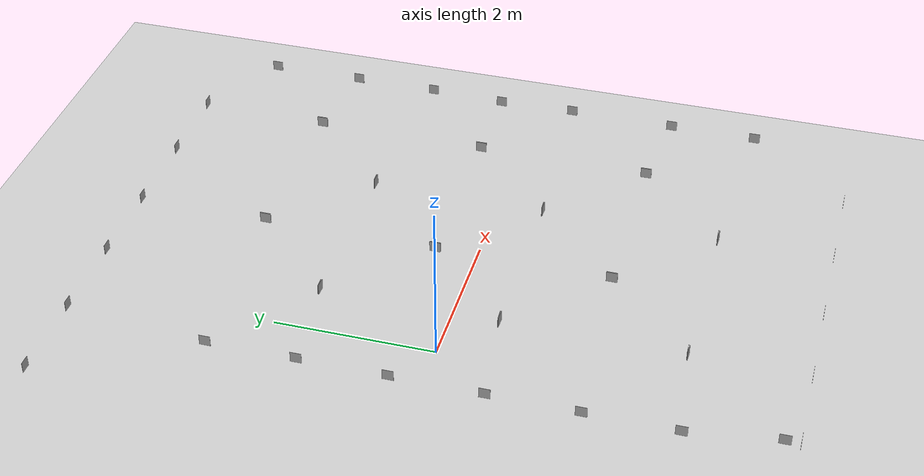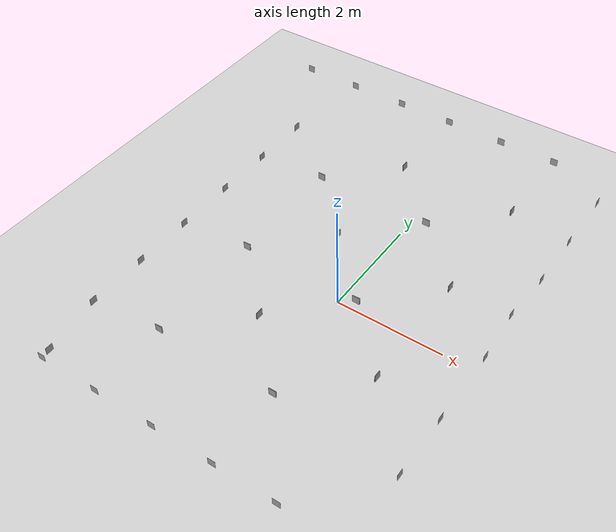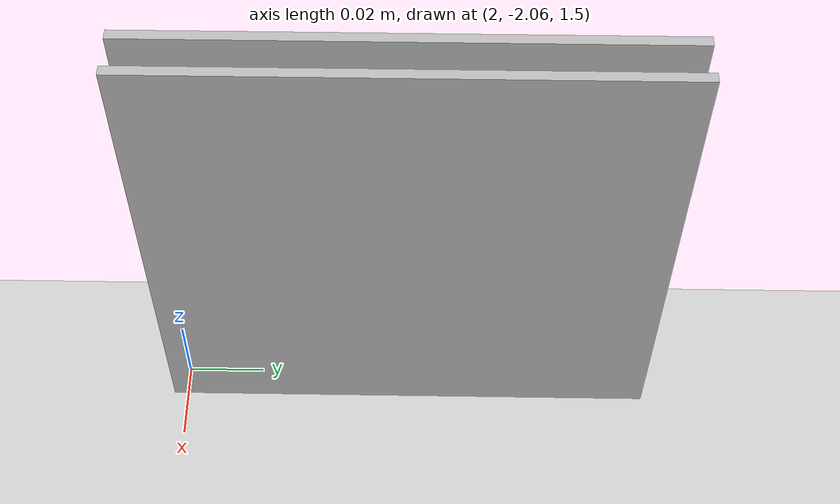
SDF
<sdf version="1.5">
 <world name="default">
  <spherical_coordinates>
   <latitude_deg>48.8789</latitude_deg>
   <longitude_deg>2.36778</longitude_deg>
   <surface_model>EARTH_WGS84</surface_model>
   <elevation>0</elevation>
   <heading_deg>0</heading_deg>
  </spherical_coordinates>
  <physics name="default_physics" default="0" type="ode">
   <real_time_update_rate>1000</real_time_update_rate>
   <max_step_size>0.001</max_step_size>
   <real_time_factor>1</real_time_factor>
   <max_contacts>20</max_contacts>
   <gravity>0 0 -9.81</gravity>
   <magnetic_field>0 2.1e-05 -4.3e-05</magnetic_field>
   <ode>
    <solver>
     <type>world</type>
     <min_step_size>0.0001</min_step_size>
     <iters>50</iters>
     <precon_iters>0</precon_iters>
     <sor>1.4</sor>
     <use_dynamic_moi_rescaling>1</use_dynamic_moi_rescaling>
    </solver>
    <constraints>
     <cfm>0</cfm>
     <erp>0.2</erp>
     <contact_max_correcting_vel>100</contact_max_correcting_vel>
     <contact_surface_layer>0.001</contact_surface_layer>
    </constraints>
   </ode>
  </physics>
  <atmosphere type="adiabatic">
   <temperature>298.15</temperature>
   <pressure>101325</pressure>
   <temperature_gradient>-0.0065</temperature_gradient>
  </atmosphere>
  <light name="sun" type="directional">
   <pose>0 0 10 0 -0 0</pose>
   <diffuse>0.8 0.8 0.8 1</diffuse>
   <specular>0.2 0.2 0.2 1</specular>
   <attenuation>
    <range>1000</range>
    <constant>0.9</constant>
    <linear>0.01</linear>
    <quadratic>0.001</quadratic>
   </attenuation>
   <direction>-0.5 0.1 -0.9</direction>
  </light>
  <model name="ground_plane">
   <static>1</static>
   <link name="link">
    <collision name="collision">
     <geometry><plane><normal>0 0 1</normal><size>100 100</size></plane></geometry>
     <surface><friction><ode><mu>100</mu><mu2>50</mu2></ode></friction></surface>
    </collision>
    <visual name="visual">
     <cast_shadows>0</cast_shadows>
     <geometry><plane><normal>0 0 1</normal><size>100 100</size></plane></geometry>
     <material>
      <script><uri>file://media/materials/scripts/gazebo.material</uri><name>Gazebo/Grey</name></script>
     </material>
    </visual>
   </link>
  </model>
  <scene><ambient>0.4 0.4 0.4 1</ambient><background>0.7 0.7 0.7 1</background><shadows>0</shadows></scene>
  <model name="marker1">
   <static>1</static>
   <link name="link">
    <visual name="visual">
     <geometry><mesh><uri>model://marker1/meshes/marker1.dae</uri><scale>0.25 0.25 0.25</scale></mesh></geometry>
    </visual>
   </link>
   <pose>3 0 1.51912 0 -0 0</pose>
  </model>
  <model name="marker2">
   <static>1</static>
   <link name="link">
    <visual name="visual">
     <geometry><mesh><uri>model://marker2/meshes/marker2.dae</uri><scale>0.25 0.25 0.25</scale></mesh></geometry>
    </visual>
   </link>
   <pose>3.05115 -0.882451 1.50634 0 -0 0</pose>
  </model>
  <model name="marker3">
   <static>1</static>
   <link name="link">
    <visual name="visual">
     <geometry><mesh><uri>model://marker3/meshes/marker3.dae</uri><scale>0.25 0.25 0.25</scale></mesh></geometry>
    </visual>
   </link>
   <pose>3.05115 -2.11831 1.50634 0 -0 0</pose>
  </model>
  <model name="marker4">
   <static>1</static>
   <link name="link">
    <visual name="visual">
     <geometry><mesh><uri>model://marker4/meshes/marker4.dae</uri><scale>0.25 0.25 0.25</scale></mesh></geometry>
    </visual>
   </link>
   <pose>3.05115 -3.1257 1.50634 0 -0 0</pose>
  </model>
  <model name="marker5">
   <static>1</static>
   <link name="link">
    <visual name="visual">
     <geometry><mesh><uri>model://marker5/meshes/marker5.dae</uri><scale>0.25 0.25 0.25</scale></mesh></geometry>
    </visual>
   </link>
   <pose>2.02991 -4.29064 1.50634 0 0 -1.5708</pose>
  </model>
  <model name="marker6">
   <static>1</static>
   <link name="link">
    <visual name="visual">
     <geometry><mesh><uri>model://marker6/meshes/marker6.dae</uri><scale>0.25 0.25 0.25</scale></mesh></geometry>
    </visual>
   </link>
   <pose>1.02289 -4.29064 1.50634 0 0 -1.5708</pose>
  </model>
  <model name="marker7">
   <static>1</static>
   <link name="link">
    <visual name="visual">
     <geometry><mesh><uri>model://marker7/meshes/marker7.dae</uri><scale>0.25 0.25 0.25</scale></mesh></geometry>
    </visual>
   </link>
   <pose>0.016929 -4.29064 1.50634 0 0 -1.5708</pose>
  </model>
  <model name="marker8">
   <static>1</static>
   <link name="link">
    <visual name="visual">
     <geometry><mesh><uri>model://marker8/meshes/marker8.dae</uri><scale>0.25 0.25 0.25</scale></mesh></geometry>
    </visual>
   </link>
   <pose>-0.988321 -4.29064 1.50634 0 0 -1.5708</pose>
  </model>
  <model name="marker9">
   <static>1</static>
   <link name="link">
    <visual name="visual">
     <geometry><mesh><uri>model://marker9/meshes/marker9.dae</uri><scale>0.25 0.25 0.25</scale></mesh></geometry>
    </visual>
   </link>
   <pose>-1.98317 -4.29064 1.50634 0 0 -1.5708</pose>
  </model>
  <model name="marker10">
   <static>1</static>
   <link name="link">
    <visual name="visual">
     <geometry><mesh><uri>model://marker10/meshes/marker10.dae</uri><scale>0.25 0.25 0.25</scale></mesh></geometry>
    </visual>
   </link>
   <pose>-2 -4.1324 1.50634 0 -0 3.1415</pose>
  </model>
  <model name="marker11">
   <static>1</static>
   <link name="link">
    <visual name="visual">
     <geometry><mesh><uri>model://marker11/meshes/marker11.dae</uri><scale>0.25 0.25 0.25</scale></mesh></geometry>
    </visual>
   </link>
   <pose>-2.1484 -3.13559 1.50634 0 -0 3.14159</pose>
  </model>
  <model name="marker12">
   <static>1</static>
   <link name="link">
    <visual name="visual">
     <geometry><mesh><uri>model://marker12/meshes/marker12.dae</uri><scale>0.25 0.25 0.25</scale></mesh></geometry>
    </visual>
   </link>
   <pose>-2.1484 -2.12866 1.50634 0 -0 3.14159</pose>
  </model>
  <model name="marker13">
   <static>1</static>
   <link name="link">
    <visual name="visual">
     <geometry><mesh><uri>model://marker13/meshes/marker13.dae</uri><scale>0.25 0.25 0.25</scale></mesh></geometry>
    </visual>
   </link>
   <pose>-2.1484 -1.1333 1.50634 0 -0 3.14159</pose>
  </model>
  <model name="marker14">
   <static>1</static>
   <link name="link">
    <visual name="visual">
     <geometry><mesh><uri>model://marker14/meshes/marker14.dae</uri><scale>0.25 0.25 0.25</scale></mesh></geometry>
    </visual>
   </link>
   <pose>-2.1484 -0.116922 1.50634 0 -0 3.14159</pose>
  </model>
  <model name="marker15">
   <static>1</static>
   <link name="link">
    <visual name="visual">
     <geometry><mesh><uri>model://marker15/meshes/marker15.dae</uri><scale>0.25 0.25 0.25</scale></mesh></geometry>
    </visual>
   </link>
   <pose>-2.1484 0.873925 1.50634 0 -0 3.14159</pose>
  </model>
  <model name="marker16">
   <static>1</static>
   <link name="link">
    <visual name="visual">
     <geometry><mesh><uri>model://marker16/meshes/marker16.dae</uri><scale>0.25 0.25 0.25</scale></mesh></geometry>
    </visual>
   </link>
   <pose>-2.1484 1.87713 1.50634 0 -0 3.14159</pose>
  </model>
  <model name="marker17">
   <static>1</static>
   <link name="link">
    <visual name="visual">
     <geometry><mesh><uri>model://marker17/meshes/marker17.dae</uri><scale>0.25 0.25 0.25</scale></mesh></geometry>
    </visual>
   </link>
   <pose>-2.98396 3.51055 1.50634 0 -0 1.5708</pose>
  </model>
  <model name="marker18">
   <static>1</static>
   <link name="link">
    <visual name="visual">
     <geometry><mesh><uri>model://marker18/meshes/marker18.dae</uri><scale>0.25 0.25 0.25</scale></mesh></geometry>
    </visual>
   </link>
   <pose>-1.97987 3.51055 1.50634 0 -0 1.5708</pose>
  </model>
  <model name="marker19">
   <static>1</static>
   <link name="link">
    <visual name="visual">
     <geometry><mesh><uri>model://marker19/meshes/marker19.dae</uri><scale>0.25 0.25 0.25</scale></mesh></geometry>
    </visual>
   </link>
   <pose>-0.975307 3.51055 1.50634 0 -0 1.5708</pose>
  </model>
  <model name="marker20">
   <static>1</static>
   <link name="link">
    <visual name="visual">
     <geometry><mesh><uri>model://marker20/meshes/marker20.dae</uri><scale>0.25 0.25 0.25</scale></mesh></geometry>
    </visual>
   </link>
   <pose>0.011529 3.51055 1.50634 0 -0 1.5708</pose>
  </model>
  <model name="marker21">
   <static>1</static>
   <link name="link">
    <visual name="visual">
     <geometry><mesh><uri>model://marker21/meshes/marker21.dae</uri><scale>0.25 0.25 0.25</scale></mesh></geometry>
    </visual>
   </link>
   <pose>1.03378 3.51055 1.50634 0 -0 1.5708</pose>
  </model>
  <model name="marker22">
   <static>1</static>
   <link name="link">
    <visual name="visual">
     <geometry><mesh><uri>model://marker22/meshes/marker22.dae</uri><scale>0.25 0.25 0.25</scale></mesh></geometry>
    </visual>
   </link>
   <pose>2.03024 3.51055 1.50634 0 -0 1.5708</pose>
  </model>
  <model name="marker23">
   <static>1</static>
   <link name="link">
    <visual name="visual">
     <geometry><mesh><uri>model://marker23/meshes/marker23.dae</uri><scale>0.25 0.25 0.25</scale></mesh></geometry>
    </visual>
   </link>
   <pose>3.05115 1.87091 1.50634 0 -0 0</pose>
  </model>
  <model name="marker24">
   <static>1</static>
   <link name="link">
    <visual name="visual">
     <geometry><mesh><uri>model://marker24/meshes/marker24.dae</uri><scale>0.25 0.25 0.25</scale></mesh></geometry>
    </visual>
   </link>
   <pose>3.05115 0.889399 1.50634 0 -0 0</pose>
  </model>
  <model name="marker25">
   <static>1</static>
   <link name="link">
    <visual name="visual">
     <geometry><mesh><uri>model://marker25/meshes/marker25.dae</uri><scale>0.25 0.25 0.25</scale></mesh></geometry>
    </visual>
   </link>
   <pose>3.05115 2.96 1.50634 0 -0 0</pose>
  </model>
  <model name="marker26">
   <static>1</static>
   <link name="link">
    <visual name="visual">
     <geometry><mesh><uri>model://marker26/meshes/marker26.dae</uri><scale>0.25 0.25 0.25</scale></mesh></geometry>
    </visual>
   </link>
   <pose>0 2 1.50634 0 -0 0</pose>
  </model>
  <model name="marker27">
   <static>1</static>
   <link name="link">
    <visual name="visual">
     <geometry><mesh><uri>model://marker27/meshes/marker27.dae</uri><scale>0.25 0.25 0.25</scale></mesh></geometry>
    </visual>
   </link>
   <pose>0.01 2 1.50634 0 -0 3.1415</pose>
  </model>
  <model name="marker28">
   <static>1</static>
   <link name="link">
    <visual name="visual">
     <geometry><mesh><uri>model://marker28/meshes/marker28.dae</uri><scale>0.25 0.25 0.25</scale></mesh></geometry>
    </visual>
   </link>
   <pose>-1 1 1.50634 0 -0 1.54</pose>
  </model>
  <model name="marker29">
   <static>1</static>
   <link name="link">
    <visual name="visual">
     <geometry><mesh><uri>model://marker29/meshes/marker29.dae</uri><scale>0.25 0.25 0.25</scale></mesh></geometry>
    </visual>
   </link>
   <pose>2 2 1.50634 0 -0 0</pose>
  </model>
  <model name="marker30">
   <static>1</static>
   <link name="link">
    <visual name="visual">
     <geometry><mesh><uri>model://marker30/meshes/marker30.dae</uri><scale>0.25 0.25 0.25</scale></mesh></geometry>
    </visual>
   </link>
   <pose>2.01 2 1.50634 0 -0 3.1415</pose>
  </model>
  <model name="marker31">
   <static>1</static>
   <link name="link">
    <visual name="visual">
     <geometry><mesh><uri>model://marker31/meshes/marker31.dae</uri><scale>0.25 0.25 0.25</scale></mesh></geometry>
    </visual>
   </link>
   <pose>1 1 1.50634 0 -0 1.54</pose>
  </model>
  <model name="marker32">
   <static>1</static>
   <link name="link">
    <visual name="visual">
     <geometry><mesh><uri>model://marker32/meshes/marker32.dae</uri><scale>0.25 0.25 0.25</scale></mesh></geometry>
    </visual>
   </link>
   <pose>2 0 1.50634 0 -0 0</pose>
  </model>
  <model name="marker33">
   <static>1</static>
   <link name="link">
    <visual name="visual">
     <geometry><mesh><uri>model://marker33/meshes/marker33.dae</uri><scale>0.25 0.25 0.25</scale></mesh></geometry>
    </visual>
   </link>
   <pose>2.01 0 1.50634 0 -0 3.1415</pose>
  </model>
  <model name="marker34">
   <static>1</static>
   <link name="link">
    <visual name="visual">
     <geometry><mesh><uri>model://marker34/meshes/marker34.dae</uri><scale>0.25 0.25 0.25</scale></mesh></geometry>
    </visual>
   </link>
   <pose>1 -1 1.50634 0 -0 1.54</pose>
  </model>
  <model name="marker35">
   <static>1</static>
   <link name="link">
    <visual name="visual">
     <geometry><mesh><uri>model://marker35/meshes/marker35.dae</uri><scale>0.25 0.25 0.25</scale></mesh></geometry>
    </visual>
   </link>
   <pose>2 -2 1.50634 0 -0 0</pose>
  </model>
  <model name="marker36">
   <static>1</static>
   <link name="link">
    <visual name="visual">
     <geometry><mesh><uri>model://marker36/meshes/marker36.dae</uri><scale>0.25 0.25 0.25</scale></mesh></geometry>
    </visual>
   </link>
   <pose>2.01 -2 1.50634 0 -0 3.1415</pose>
  </model>
  <model name="marker37">
   <static>1</static>
   <link name="link">
    <visual name="visual">
     <geometry><mesh><uri>model://marker37/meshes/marker37.dae</uri><scale>0.25 0.25 0.25</scale></mesh></geometry>
    </visual>
   </link>
   <pose>1 -3 1.50634 0 -0 -1.54</pose>
  </model>
  <model name="marker38">
   <static>1</static>
   <link name="link">
    <visual name="visual">
     <geometry><mesh><uri>model://marker38/meshes/marker38.dae</uri><scale>0.25 0.25 0.25</scale></mesh></geometry>
    </visual>
   </link>
   <pose>0 -2 1.50634 0 -0 0</pose>
  </model>
  <model name="marker39">
   <static>1</static>
   <link name="link">
    <visual name="visual">
     <geometry><mesh><uri>model://marker39/meshes/marker39.dae</uri><scale>0.25 0.25 0.25</scale></mesh></geometry>
    </visual>
   </link>
   <pose>0.01 -2 1.50634 0 -0 3.1415</pose>
  </model>
  <model name="marker40">
   <static>1</static>
   <link name="link">
    <visual name="visual">
     <geometry><mesh><uri>model://marker40/meshes/marker40.dae</uri><scale>0.25 0.25 0.25</scale></mesh></geometry>
    </visual>
   </link>
   <pose>-1 -3 1.50634 0 -0 -1.54</pose>
  </model>
  <model name="marker41">
   <static>1</static>
   <link name="link">
    <visual name="visual">
     <geometry><mesh><uri>model://marker41/meshes/marker41.dae</uri><scale>0.25 0.25 0.25</scale></mesh></geometry>
    </visual>
   </link>
   <pose>0 0 1.50634 0 -0 0</pose>
  </model>
  <model name="marker42">
   <static>1</static>
   <link name="link">
    <visual name="visual">
     <geometry><mesh><uri>model://marker42/meshes/marker42.dae</uri><scale>0.25 0.25 0.25</scale></mesh></geometry>
    </visual>
   </link>
   <pose>0.01 0 1.50634 0 -0 3.1415</pose>
  </model>
  <model name="marker43">
   <static>1</static>
   <link name="link">
    <visual name="visual">
     <geometry><mesh><uri>model://marker43/meshes/marker43.dae</uri><scale>0.25 0.25 0.25</scale></mesh></geometry>
    </visual>
   </link>
   <pose>-1 -1 1.50634 0 -0 1.54</pose>
  </model>
  <model name="marker44">
   <static>1</static>
   <link name="link">
    <visual name="visual">
     <geometry><mesh><uri>model://marker44/meshes/marker44.dae</uri><scale>0.25 0.25 0.25</scale></mesh></geometry>
    </visual>
   </link>
   <pose>1 1.01 1.50634 0 -0 -1.54</pose>
  </model>
  <model name="marker45">
   <static>1</static>
   <link name="link">
    <visual name="visual">
     <geometry><mesh><uri>model://marker45/meshes/marker45.dae</uri><scale>0.25 0.25 0.25</scale></mesh></geometry>
    </visual>
   </link>
   <pose>-1 1.01 1.50634 0 -0 -1.54</pose>
  </model>
  <model name="marker46">
   <static>1</static>
   <link name="link">
    <visual name="visual">
     <geometry><mesh><uri>model://marker46/meshes/marker46.dae</uri><scale>0.25 0.25 0.25</scale></mesh></geometry>
    </visual>
   </link>
   <pose>1 -0.99 1.50634 0 -0 -1.54</pose>
  </model>
  <model name="marker47">
   <static>1</static>
   <link name="link">
    <visual name="visual">
     <geometry><mesh><uri>model://marker47/meshes/marker47.dae</uri><scale>0.25 0.25 0.25</scale></mesh></geometry>
    </visual>
   </link>
   <pose>-1 -0.99 1.50634 0 -0 -1.54</pose>
  </model>
  <model name="marker48">
   <static>1</static>
   <link name="link">
    <visual name="visual">
     <geometry><mesh><uri>model://marker48/meshes/marker48.dae</uri><scale>0.25 0.25 0.25</scale></mesh></geometry>
    </visual>
   </link>
   <pose>1 -3.01 1.50634 0 -0 1.54</pose>
  </model>
  <model name="marker49">
   <static>1</static>
   <link name="link">
    <visual name="visual">
     <geometry><mesh><uri>model://marker49/meshes/marker49.dae</uri><scale>0.25 0.25 0.25</scale></mesh></geometry>
    </visual>
   </link>
   <pose>-1 -3.01 1.50634 0 -0 1.54</pose>
  </model>
 </world>
</sdf>
